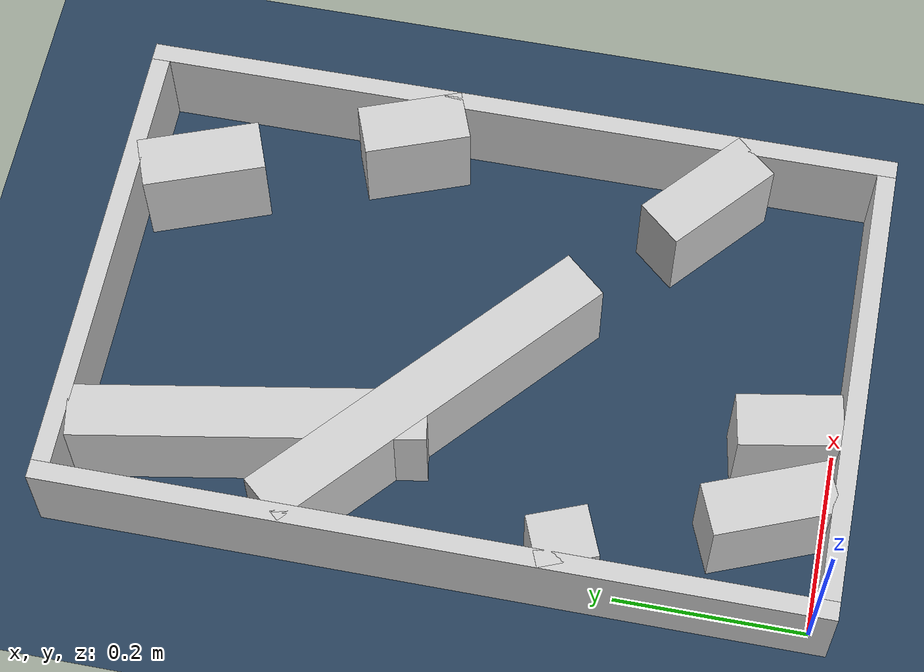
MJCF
<?xml version="1.0" ?>
<mujoco model="generated_real_template">
  <compiler angle="degree"/>
  <option timestep="0.002" integrator="implicitfast" iterations="100" cone="elliptic"/>
  <default>
    <geom density="1"/>
  </default>
  <asset>
    <texture builtin="gradient" height="3072" rgb1="0.3 0.5 0.7" rgb2="0 0 0" type="skybox" width="512"/>
    <texture builtin="checker" height="300" mark="edge" markrgb="0.8 0.8 0.8" name="groundplane" rgb1="0.2 0.3 0.4" rgb2="0.1 0.2 0.3" type="2d" width="300"/>
    <material name="groundplane" reflectance="0.2" texrepeat="5 5" texture="groundplane" texuniform="true"/>
  </asset>
  <worldbody>
    <light dir="0 0 -1" directional="true" pos="0 0 1.5"/>
    <geom name="floor" type="plane" condim="4" friction="0.5 0.005 0.001" material="groundplane" size="0 0 0.05"/>
    <body name="walls">
      <geom name="wall_boundary_left" type="box" condim="4" friction="1.0 0.005 0.0001" rgba="0.8 0.8 0.8 1" pos="-0.010000 0.387500 0.050000" euler="0 0 0.000000" size="0.010000 0.407500 0.050000"/>
      <geom name="wall_boundary_right" type="box" condim="4" friction="1.0 0.005 0.0001" rgba="0.8 0.8 0.8 1" pos="0.500000 0.387500 0.050000" euler="0 0 0.000000" size="0.010000 0.407500 0.050000"/>
      <geom name="wall_boundary_bottom" type="box" condim="4" friction="1.0 0.005 0.0001" rgba="0.8 0.8 0.8 1" pos="0.245000 -0.010000 0.050000" euler="0 0 0.000000" size="0.245000 0.010000 0.050000"/>
      <geom name="wall_boundary_top" type="box" condim="4" friction="1.0 0.005 0.0001" rgba="0.8 0.8 0.8 1" pos="0.245000 0.785000 0.050000" euler="0 0 0.000000" size="0.245000 0.010000 0.050000"/>
      <geom name="wall_inner_1_1" type="box" condim="4" friction="1.0 0.005 0.0001" rgba="0.8 0.8 0.8 1" pos="0.186141 0.053523 0.050000" euler="0 0 99.878757" size="0.054329 0.028500 0.050000"/>
      <geom name="wall_inner_1_2" type="box" condim="4" friction="1.0 0.005 0.0001" rgba="0.8 0.8 0.8 1" pos="0.091849 0.594977 0.050000" euler="0 0 99.878757" size="0.182732 0.028500 0.050000"/>
      <geom name="wall_inner_2_1" type="box" condim="4" friction="1.0 0.005 0.0001" rgba="0.8 0.8 0.8 1" pos="0.463236 0.497826 0.050000" euler="0 0 110.713732" size="0.056843 0.028500 0.050000"/>
      <geom name="wall_inner_2_2" type="box" condim="4" friction="1.0 0.005 0.0001" rgba="0.8 0.8 0.8 1" pos="0.381647 0.713589 0.050000" euler="0 0 110.713732" size="0.065655 0.028500 0.050000"/>
      <geom name="wall_inner_3_1" type="box" condim="4" friction="1.0 0.005 0.0001" rgba="0.8 0.8 0.8 1" pos="0.156662 0.421852 0.050000" euler="0 0 -41.246153" size="0.208359 0.028500 0.050000"/>
      <geom name="wall_inner_3_2" type="box" condim="4" friction="1.0 0.005 0.0001" rgba="0.8 0.8 0.8 1" pos="0.438846 0.174416 0.050000" euler="0 0 -41.246153" size="0.068034 0.028500 0.050000"/>
      <geom name="wall_inner_4_1" type="box" condim="4" friction="1.0 0.005 0.0001" rgba="0.8 0.8 0.8 1" pos="0.018293 0.258261 0.050000" euler="0 0 -68.147332" size="0.031808 0.028500 0.050000"/>
      <geom name="wall_inner_4_2" type="box" condim="4" friction="1.0 0.005 0.0001" rgba="0.8 0.8 0.8 1" pos="0.097351 0.061127 0.050000" euler="0 0 -68.147332" size="0.065859 0.028500 0.050000"/>
    </body>
  </worldbody>
</mujoco>
